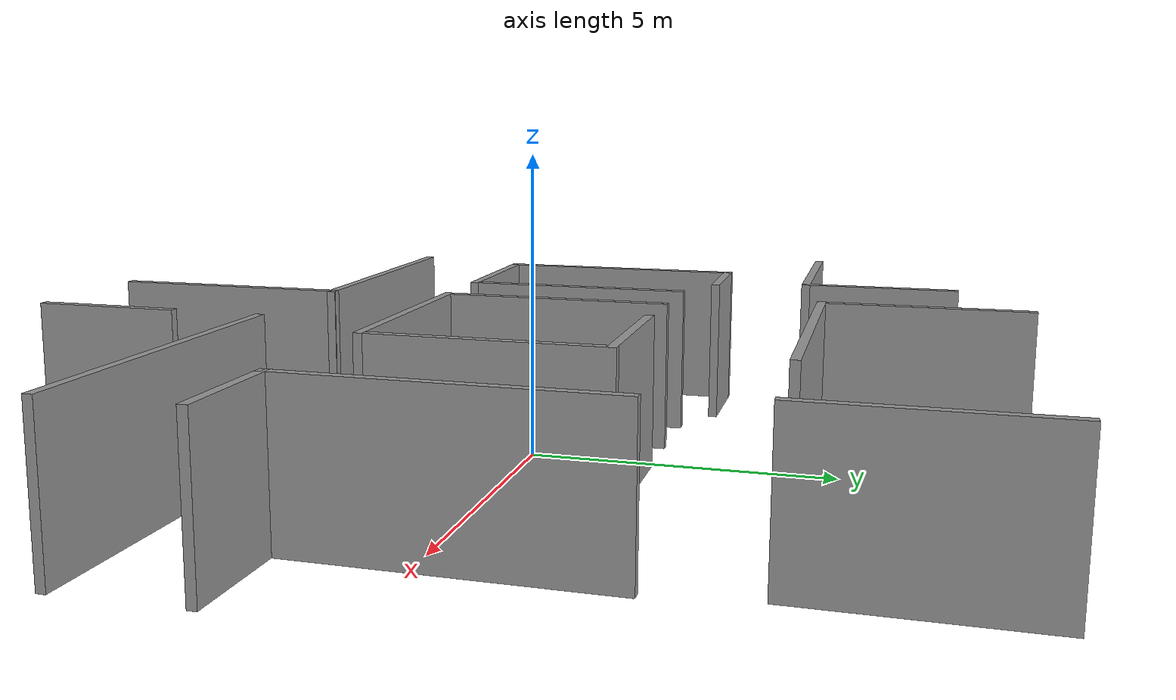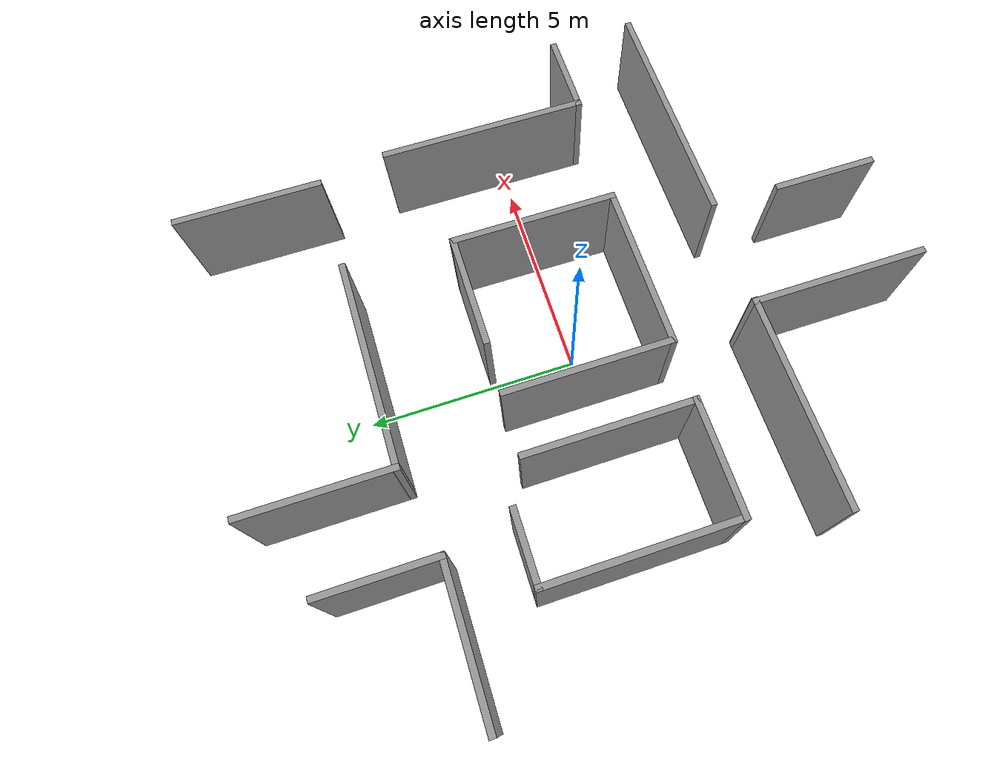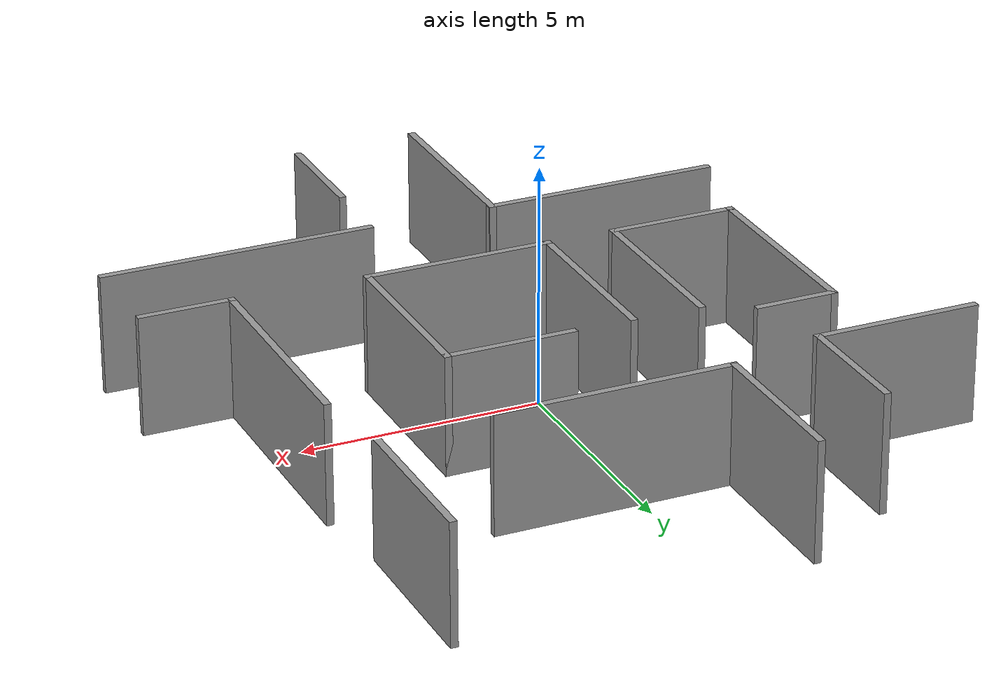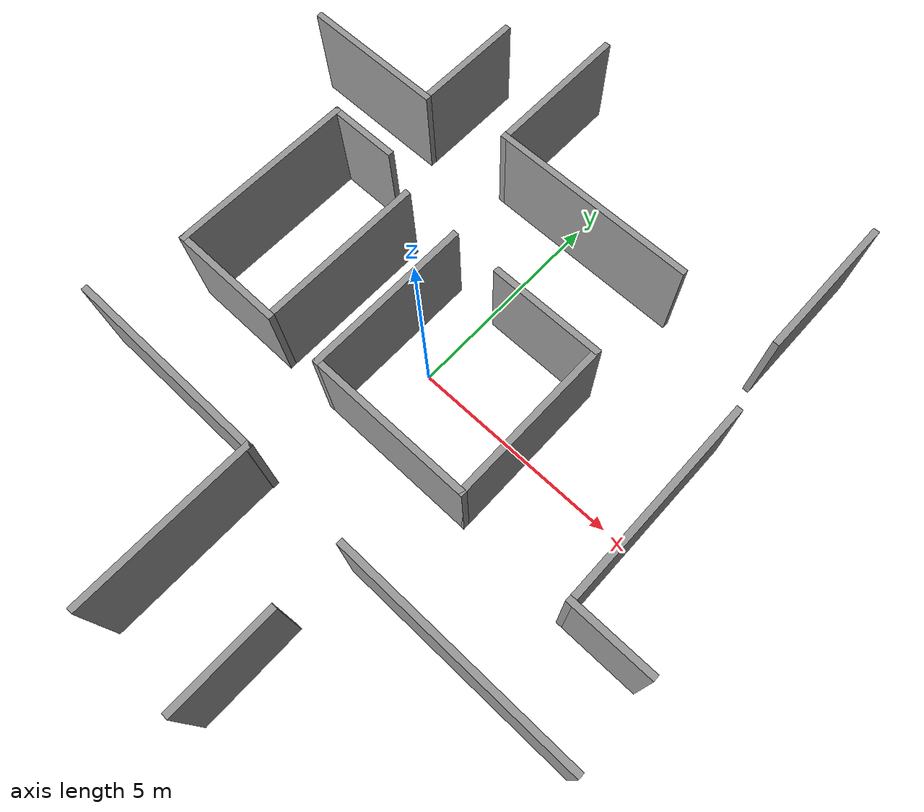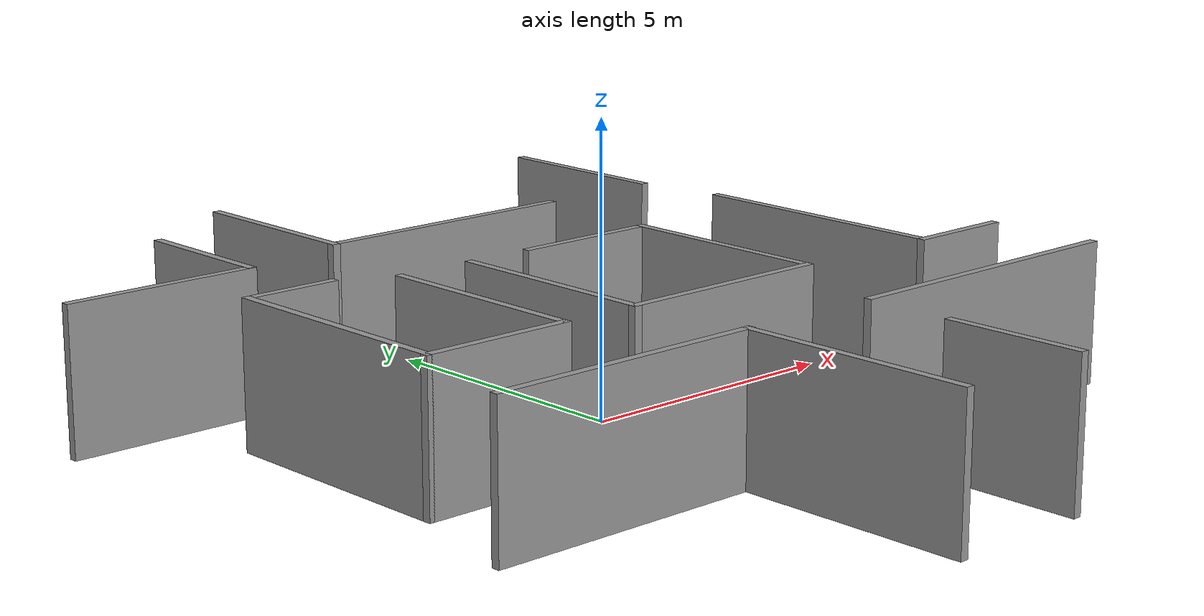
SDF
<?xml version='1.0'?>
<sdf version='1.7'>
  <model name='world_25_6.world'>
    <pose>0.119762 -0.057609 0 0 -0 0</pose>
    <link name='Wall_0'>
      <collision name='Wall_0_Collision'>
        <geometry>
          <box>
            <size>2.75 0.15 2.5</size>
          </box>
        </geometry>
        <pose>0 0 1.25 0 -0 0</pose>
      </collision>
      <visual name='Wall_0_Visual'>
        <pose>0 0 1.25 0 -0 0</pose>
        <geometry>
          <box>
            <size>2.75 0.15 2.5</size>
          </box>
        </geometry>
        <material>
          <script>
            <uri>file://media/materials/scripts/gazebo.material</uri>
            <name>Gazebo/Grey</name>
          </script>
          <ambient>1 1 1 1</ambient>
        </material>
        <meta>
          <layer>0</layer>
        </meta>
      </visual>
      <pose>1.38481 2.03832 0 0 -0 0</pose>
    </link>
    <link name='Wall_11'>
      <collision name='Wall_11_Collision'>
        <geometry>
          <box>
            <size>2 0.15 2.5</size>
          </box>
        </geometry>
        <pose>0 0 1.25 0 -0 0</pose>
      </collision>
      <visual name='Wall_11_Visual'>
        <pose>0 0 1.25 0 -0 0</pose>
        <geometry>
          <box>
            <size>2 0.15 2.5</size>
          </box>
        </geometry>
        <material>
          <script>
            <uri>file://media/materials/scripts/gazebo.material</uri>
            <name>Gazebo/Grey</name>
          </script>
          <ambient>1 1 1 1</ambient>
        </material>
        <meta>
          <layer>0</layer>
        </meta>
      </visual>
      <pose>6.38484 -1.9314 0 0 -0 3.14159</pose>
    </link>
    <link name='Wall_13'>
      <collision name='Wall_13_Collision'>
        <geometry>
          <box>
            <size>5 0.15 2.5</size>
          </box>
        </geometry>
        <pose>0 0 1.25 0 -0 0</pose>
      </collision>
      <visual name='Wall_13_Visual'>
        <pose>0 0 1.25 0 -0 0</pose>
        <geometry>
          <box>
            <size>5 0.15 2.5</size>
          </box>
        </geometry>
        <material>
          <script>
            <uri>file://media/materials/scripts/gazebo.material</uri>
            <name>Gazebo/Grey</name>
          </script>
          <ambient>1 1 1 1</ambient>
        </material>
        <meta>
          <layer>0</layer>
        </meta>
      </visual>
      <pose>5.45984 0.493602 0 0 -0 1.5708</pose>
    </link>
    <link name='Wall_15'>
      <collision name='Wall_15_Collision'>
        <geometry>
          <box>
            <size>4 0.15 2.5</size>
          </box>
        </geometry>
        <pose>0 0 1.25 0 -0 0</pose>
      </collision>
      <visual name='Wall_15_Visual'>
        <pose>0 0 1.25 0 -0 0</pose>
        <geometry>
          <box>
            <size>4 0.15 2.5</size>
          </box>
        </geometry>
        <material>
          <script>
            <uri>file://media/materials/scripts/gazebo.material</uri>
            <name>Gazebo/Grey</name>
          </script>
          <ambient>1 1 1 1</ambient>
        </material>
        <meta>
          <layer>0</layer>
        </meta>
      </visual>
      <pose>-1.16519 0.113325 0 0 -0 1.5708</pose>
    </link>
    <link name='Wall_17'>
      <collision name='Wall_17_Collision'>
        <geometry>
          <box>
            <size>5.75 0.15 2.5</size>
          </box>
        </geometry>
        <pose>0 0 1.25 0 -0 0</pose>
      </collision>
      <visual name='Wall_17_Visual'>
        <pose>0 0 1.25 0 -0 0</pose>
        <geometry>
          <box>
            <size>5.75 0.15 2.5</size>
          </box>
        </geometry>
        <material>
          <script>
            <uri>file://media/materials/scripts/gazebo.material</uri>
            <name>Gazebo/Grey</name>
          </script>
          <ambient>1 1 1 1</ambient>
        </material>
        <meta>
          <layer>0</layer>
        </meta>
      </visual>
      <pose>4.57068 -3.96937 0 0 -0 3.14159</pose>
    </link>
    <link name='Wall_19'>
      <collision name='Wall_19_Collision'>
        <geometry>
          <box>
            <size>2.5 0.15 2.5</size>
          </box>
        </geometry>
        <pose>0 0 1.25 0 -0 0</pose>
      </collision>
      <visual name='Wall_19_Visual'>
        <pose>0 0 1.25 0 -0 0</pose>
        <geometry>
          <box>
            <size>2.5 0.15 2.5</size>
          </box>
        </geometry>
        <material>
          <script>
            <uri>file://media/materials/scripts/gazebo.material</uri>
            <name>Gazebo/Grey</name>
          </script>
          <ambient>1 1 1 1</ambient>
        </material>
        <meta>
          <layer>0</layer>
        </meta>
      </visual>
      <pose>1.69781 -6.78503 0 0 -0 -1.5708</pose>
    </link>
    <link name='Wall_2'>
      <collision name='Wall_2_Collision'>
        <geometry>
          <box>
            <size>4 0.15 2.5</size>
          </box>
        </geometry>
        <pose>0 0 1.25 0 -0 0</pose>
      </collision>
      <visual name='Wall_2_Visual'>
        <pose>0 0 1.25 0 -0 0</pose>
        <geometry>
          <box>
            <size>4 0.15 2.5</size>
          </box>
        </geometry>
        <material>
          <script>
            <uri>file://media/materials/scripts/gazebo.material</uri>
            <name>Gazebo/Grey</name>
          </script>
          <ambient>1 1 1 1</ambient>
        </material>
        <meta>
          <layer>0</layer>
        </meta>
      </visual>
      <pose>2.68481 0.113325 0 0 -0 -1.5708</pose>
    </link>
    <link name='Wall_21'>
      <collision name='Wall_21_Collision'>
        <geometry>
          <box>
            <size>4.22858 0.15 2.5</size>
          </box>
        </geometry>
        <pose>0 0 1.25 0 -0 0</pose>
      </collision>
      <visual name='Wall_21_Visual'>
        <pose>0 0 1.25 0 -0 0</pose>
        <geometry>
          <box>
            <size>4.22858 0.15 2.5</size>
          </box>
        </geometry>
        <material>
          <script>
            <uri>file://media/materials/scripts/gazebo.material</uri>
            <name>Gazebo/Grey</name>
          </script>
          <ambient>1 1 1 1</ambient>
        </material>
        <meta>
          <layer>0</layer>
        </meta>
      </visual>
      <pose>-0.872466 -5.93021 0 0 -0 1.5708</pose>
    </link>
    <link name='Wall_23'>
      <collision name='Wall_23_Collision'>
        <geometry>
          <box>
            <size>5 0.15 2.5</size>
          </box>
        </geometry>
        <pose>0 0 1.25 0 -0 0</pose>
      </collision>
      <visual name='Wall_23_Visual'>
        <pose>0 0 1.25 0 -0 0</pose>
        <geometry>
          <box>
            <size>5 0.15 2.5</size>
          </box>
        </geometry>
        <material>
          <script>
            <uri>file://media/materials/scripts/gazebo.material</uri>
            <name>Gazebo/Grey</name>
          </script>
          <ambient>1 1 1 1</ambient>
        </material>
        <meta>
          <layer>0</layer>
        </meta>
      </visual>
      <pose>-3.28226 -3.89114 0 0 -0 3.14159</pose>
    </link>
    <link name='Wall_25'>
      <collision name='Wall_25_Collision'>
        <geometry>
          <box>
            <size>4 0.15 2.5</size>
          </box>
        </geometry>
        <pose>0 0 1.25 0 -0 0</pose>
      </collision>
      <visual name='Wall_25_Visual'>
        <pose>0 0 1.25 0 -0 0</pose>
        <geometry>
          <box>
            <size>4 0.15 2.5</size>
          </box>
        </geometry>
        <material>
          <script>
            <uri>file://media/materials/scripts/gazebo.material</uri>
            <name>Gazebo/Grey</name>
          </script>
          <ambient>1 1 1 1</ambient>
        </material>
        <meta>
          <layer>0</layer>
        </meta>
      </visual>
      <pose>-2.59105 0.143504 0 0 -0 -1.5708</pose>
    </link>
    <link name='Wall_27'>
      <collision name='Wall_27_Collision'>
        <geometry>
          <box>
            <size>2.75 0.15 2.5</size>
          </box>
        </geometry>
        <pose>0 0 1.25 0 -0 0</pose>
      </collision>
      <visual name='Wall_27_Visual'>
        <pose>0 0 1.25 0 -0 0</pose>
        <geometry>
          <box>
            <size>2.75 0.15 2.5</size>
          </box>
        </geometry>
        <material>
          <script>
            <uri>file://media/materials/scripts/gazebo.material</uri>
            <name>Gazebo/Grey</name>
          </script>
          <ambient>1 1 1 1</ambient>
        </material>
        <meta>
          <layer>0</layer>
        </meta>
      </visual>
      <pose>-3.89105 -1.7815 0 0 -0 3.14159</pose>
    </link>
    <link name='Wall_28'>
      <collision name='Wall_28_Collision'>
        <geometry>
          <box>
            <size>4.5 0.15 2.5</size>
          </box>
        </geometry>
        <pose>0 0 1.25 0 -0 0</pose>
      </collision>
      <visual name='Wall_28_Visual'>
        <pose>0 0 1.25 0 -0 0</pose>
        <geometry>
          <box>
            <size>4.5 0.15 2.5</size>
          </box>
        </geometry>
        <material>
          <script>
            <uri>file://media/materials/scripts/gazebo.material</uri>
            <name>Gazebo/Grey</name>
          </script>
          <ambient>1 1 1 1</ambient>
        </material>
        <meta>
          <layer>0</layer>
        </meta>
      </visual>
      <pose>-5.19105 0.393504 0 0 -0 1.5708</pose>
    </link>
    <link name='Wall_29'>
      <collision name='Wall_29_Collision'>
        <geometry>
          <box>
            <size>1.75 0.15 2.5</size>
          </box>
        </geometry>
        <pose>0 0 1.25 0 -0 0</pose>
      </collision>
      <visual name='Wall_29_Visual'>
        <pose>0 0 1.25 0 -0 0</pose>
        <geometry>
          <box>
            <size>1.75 0.15 2.5</size>
          </box>
        </geometry>
        <material>
          <script>
            <uri>file://media/materials/scripts/gazebo.material</uri>
            <name>Gazebo/Grey</name>
          </script>
          <ambient>1 1 1 1</ambient>
        </material>
        <meta>
          <layer>0</layer>
        </meta>
      </visual>
      <pose>-4.39105 2.5685 0 0 -0 0</pose>
    </link>
    <link name='Wall_3'>
      <collision name='Wall_3_Collision'>
        <geometry>
          <box>
            <size>4 0.15 2.5</size>
          </box>
        </geometry>
        <pose>0 0 1.25 0 -0 0</pose>
      </collision>
      <visual name='Wall_3_Visual'>
        <pose>0 0 1.25 0 -0 0</pose>
        <geometry>
          <box>
            <size>4 0.15 2.5</size>
          </box>
        </geometry>
        <material>
          <script>
            <uri>file://media/materials/scripts/gazebo.material</uri>
            <name>Gazebo/Grey</name>
          </script>
          <ambient>1 1 1 1</ambient>
        </material>
        <meta>
          <layer>0</layer>
        </meta>
      </visual>
      <pose>0.759811 -1.81167 0 0 -0 3.14159</pose>
    </link>
    <link name='Wall_31'>
      <collision name='Wall_31_Collision'>
        <geometry>
          <box>
            <size>2.75 0.15 2.5</size>
          </box>
        </geometry>
        <pose>0 0 1.25 0 -0 0</pose>
      </collision>
      <visual name='Wall_31_Visual'>
        <pose>0 0 1.25 0 -0 0</pose>
        <geometry>
          <box>
            <size>2.75 0.15 2.5</size>
          </box>
        </geometry>
        <material>
          <script>
            <uri>file://media/materials/scripts/gazebo.material</uri>
            <name>Gazebo/Grey</name>
          </script>
          <ambient>1 1 1 1</ambient>
        </material>
        <meta>
          <layer>0</layer>
        </meta>
      </visual>
      <pose>-4.02068 5.46512 0 0 -0 -1.5708</pose>
    </link>
    <link name='Wall_32'>
      <collision name='Wall_32_Collision'>
        <geometry>
          <box>
            <size>3.5 0.15 2.5</size>
          </box>
        </geometry>
        <pose>0 0 1.25 0 -0 0</pose>
      </collision>
      <visual name='Wall_32_Visual'>
        <pose>0 0 1.25 0 -0 0</pose>
        <geometry>
          <box>
            <size>3.5 0.15 2.5</size>
          </box>
        </geometry>
        <material>
          <script>
            <uri>file://media/materials/scripts/gazebo.material</uri>
            <name>Gazebo/Grey</name>
          </script>
          <ambient>1 1 1 1</ambient>
        </material>
        <meta>
          <layer>0</layer>
        </meta>
      </visual>
      <pose>-5.69568 4.16512 0 0 -0 3.14159</pose>
    </link>
    <link name='Wall_5'>
      <collision name='Wall_5_Collision'>
        <geometry>
          <box>
            <size>5 0.15 2.5</size>
          </box>
        </geometry>
        <pose>0 0 1.25 0 -0 0</pose>
      </collision>
      <visual name='Wall_5_Visual'>
        <pose>0 0 1.25 0 -0 0</pose>
        <geometry>
          <box>
            <size>5 0.15 2.5</size>
          </box>
        </geometry>
        <material>
          <script>
            <uri>file://media/materials/scripts/gazebo.material</uri>
            <name>Gazebo/Grey</name>
          </script>
          <ambient>1 1 1 1</ambient>
        </material>
        <meta>
          <layer>0</layer>
        </meta>
      </visual>
      <pose>0.394483 4.57795 0 0 -0 3.14159</pose>
    </link>
    <link name='Wall_7'>
      <collision name='Wall_7_Collision'>
        <geometry>
          <box>
            <size>3.5 0.15 2.5</size>
          </box>
        </geometry>
        <pose>0 0 1.25 0 -0 0</pose>
      </collision>
      <visual name='Wall_7_Visual'>
        <pose>0 0 1.25 0 -0 0</pose>
        <geometry>
          <box>
            <size>3.5 0.15 2.5</size>
          </box>
        </geometry>
        <material>
          <script>
            <uri>file://media/materials/scripts/gazebo.material</uri>
            <name>Gazebo/Grey</name>
          </script>
          <ambient>1 1 1 1</ambient>
        </material>
        <meta>
          <layer>0</layer>
        </meta>
      </visual>
      <pose>-2.03052 6.25295 0 0 -0 1.5708</pose>
    </link>
    <link name='Wall_9'>
      <collision name='Wall_9_Collision'>
        <geometry>
          <box>
            <size>3.5 0.15 2.5</size>
          </box>
        </geometry>
        <pose>0 0 1.25 0 -0 0</pose>
      </collision>
      <visual name='Wall_9_Visual'>
        <pose>0 0 1.25 0 -0 0</pose>
        <geometry>
          <box>
            <size>3.5 0.15 2.5</size>
          </box>
        </geometry>
        <material>
          <script>
            <uri>file://media/materials/scripts/gazebo.material</uri>
            <name>Gazebo/Grey</name>
          </script>
          <ambient>1 1 1 1</ambient>
        </material>
        <meta>
          <layer>0</layer>
        </meta>
      </visual>
      <pose>5.16541 6.2945 0 0 -0 -1.5708</pose>
    </link>
    <static>1</static>
  </model>
</sdf>
